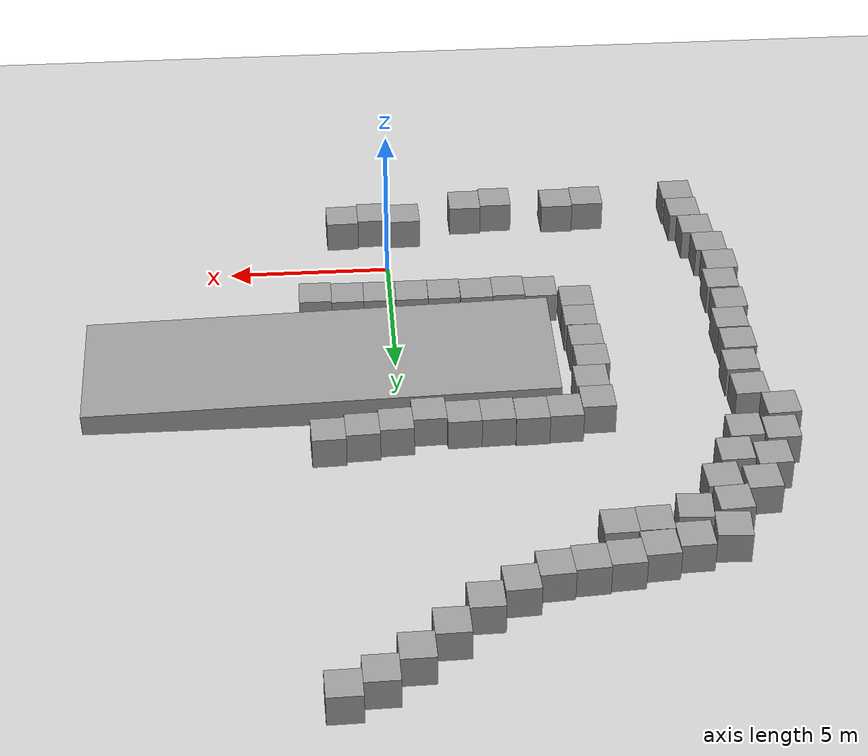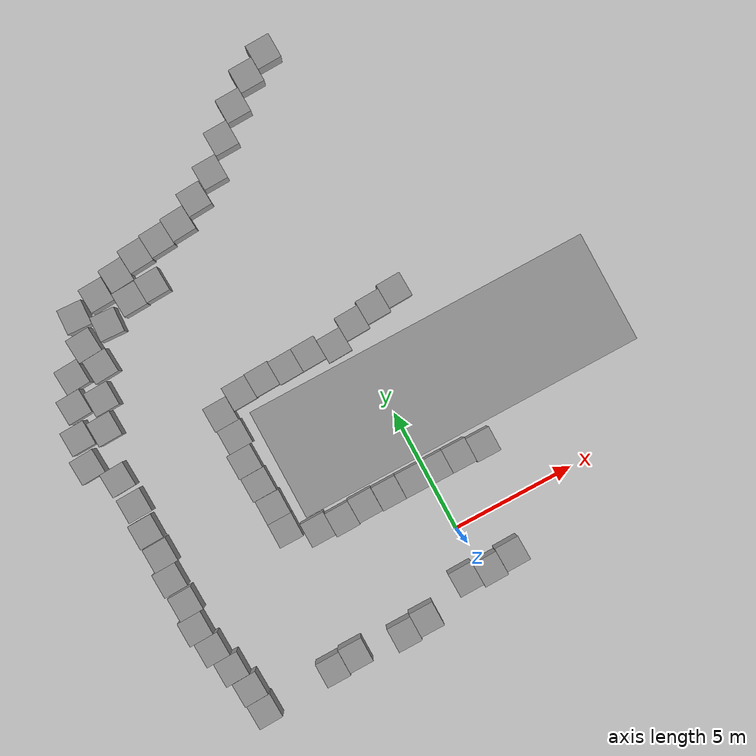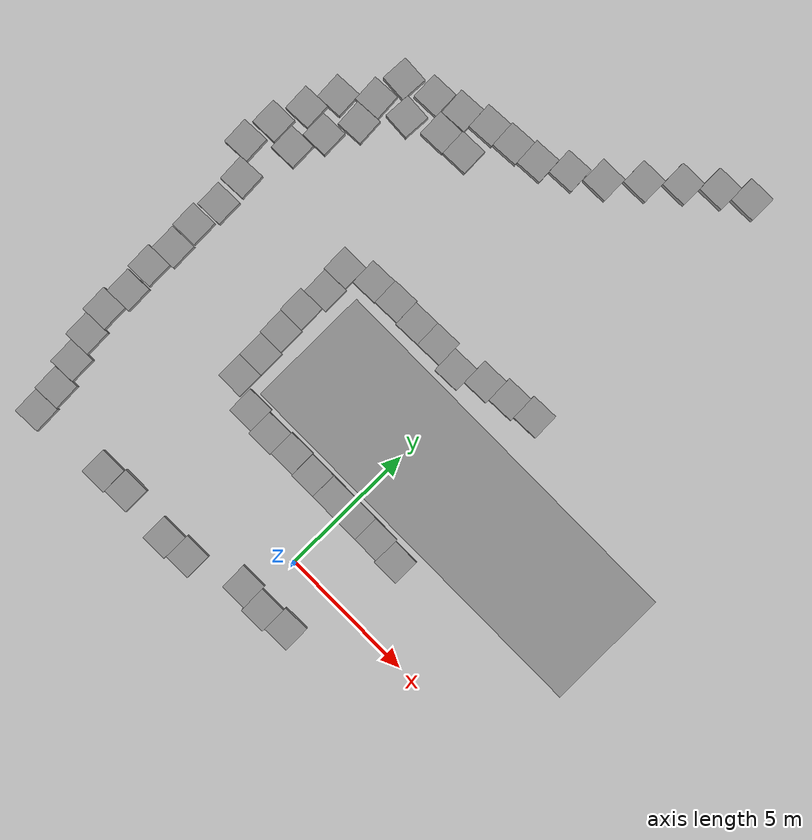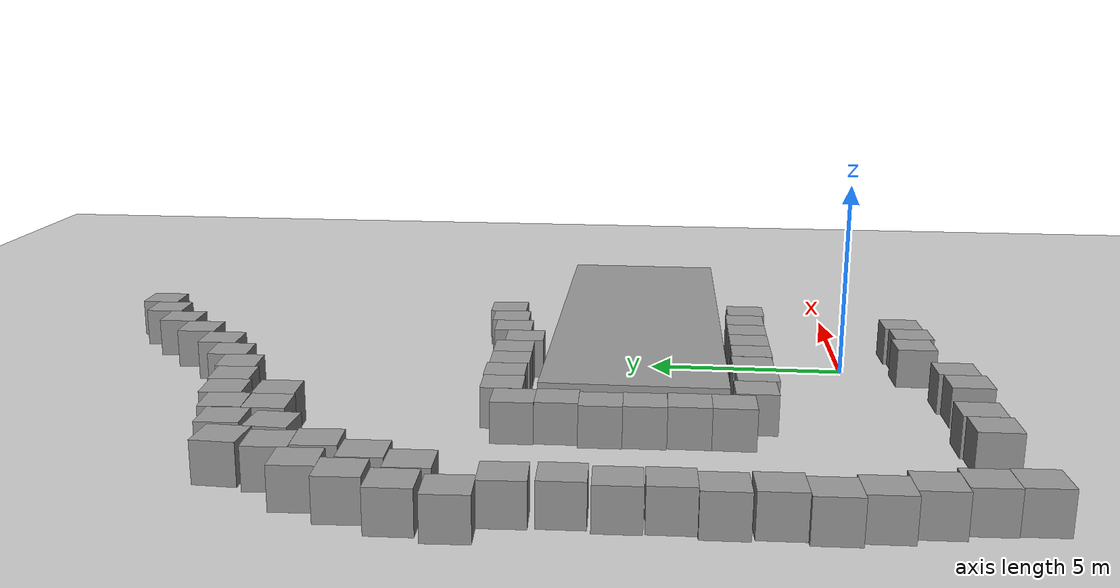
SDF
<sdf version="1.7">
 <world name="default">
  <model name="ground_plane">
   <static>1</static>
   <link name="link">
    <collision name="collision">
     <geometry><plane><normal>0 0 1</normal><size>100 100</size></plane></geometry>
     <surface>
      <contact><collide_bitmask>65535</collide_bitmask></contact>
      <friction><ode><mu>100</mu><mu2>50</mu2></ode></friction>
     </surface>
    </collision>
    <visual name="visual">
     <cast_shadows>0</cast_shadows>
     <geometry><plane><normal>0 0 1</normal><size>100 100</size></plane></geometry>
     <material>
      <script><uri>file://media/materials/scripts/gazebo.material</uri><name>Gazebo/Grey</name></script>
     </material>
    </visual>
   </link>
  </model>
  <model name="unit_box">
   <pose>-1.63061 2.48149 0.499995 -1e-05 -0 0.003924</pose>
   <link name="link">
    <inertial>
     <mass>1</mass>
     <inertia>
      <ixx>0.166667</ixx>
      <ixy>0</ixy>
      <ixz>0</ixz>
      <iyy>0.166667</iyy>
      <iyz>0</iyz>
      <izz>0.166667</izz>
     </inertia>
    </inertial>
    <collision name="collision"><geometry><box><size>1 1 1</size></box></geometry></collision>
    <visual name="visual">
     <geometry><box><size>1 1 1</size></box></geometry>
     <material>
      <script><name>Gazebo/Grey</name><uri>file://media/materials/scripts/gazebo.material</uri></script>
     </material>
    </visual>
   </link>
  </model>
  <model name="unit_box_0">
   <pose>-0.627473 2.48305 0.499995 -1e-05 -0 -0.002213</pose>
   <link name="link">
    <inertial>
     <mass>1</mass>
     <inertia>
      <ixx>0.166667</ixx>
      <ixy>0</ixy>
      <ixz>0</ixz>
      <iyy>0.166667</iyy>
      <iyz>0</iyz>
      <izz>0.166667</izz>
     </inertia>
    </inertial>
    <collision name="collision"><geometry><box><size>1 1 1</size></box></geometry></collision>
    <visual name="visual">
     <geometry><box><size>1 1 1</size></box></geometry>
     <material>
      <script><name>Gazebo/Grey</name><uri>file://media/materials/scripts/gazebo.material</uri></script>
     </material>
    </visual>
   </link>
  </model>
  <model name="unit_box_1">
   <pose>0.372526 2.48136 0.499995 -1e-05 -0 -0.002213</pose>
   <link name="link">
    <inertial>
     <mass>1</mass>
     <inertia>
      <ixx>0.166667</ixx>
      <ixy>0</ixy>
      <ixz>0</ixz>
      <iyy>0.166667</iyy>
      <iyz>0</iyz>
      <izz>0.166667</izz>
     </inertia>
    </inertial>
    <collision name="collision"><geometry><box><size>1 1 1</size></box></geometry></collision>
    <visual name="visual">
     <geometry><box><size>1 1 1</size></box></geometry>
     <material>
      <script><name>Gazebo/Grey</name><uri>file://media/materials/scripts/gazebo.material</uri></script>
     </material>
    </visual>
   </link>
  </model>
  <model name="unit_box_2">
   <pose>1.37261 2.47907 0.499995 1e-05 0 -0.002067</pose>
   <link name="link">
    <inertial>
     <mass>1</mass>
     <inertia>
      <ixx>0.166667</ixx>
      <ixy>0</ixy>
      <ixz>0</ixz>
      <iyy>0.166667</iyy>
      <iyz>0</iyz>
      <izz>0.166667</izz>
     </inertia>
    </inertial>
    <collision name="collision"><geometry><box><size>1 1 1</size></box></geometry></collision>
    <visual name="visual">
     <geometry><box><size>1 1 1</size></box></geometry>
     <material>
      <script><name>Gazebo/Grey</name><uri>file://media/materials/scripts/gazebo.material</uri></script>
     </material>
    </visual>
   </link>
  </model>
  <model name="unit_box_3">
   <pose>2.37253 2.41079 0.499995 -1e-05 -0 -0.001964</pose>
   <link name="link">
    <inertial>
     <mass>1</mass>
     <inertia>
      <ixx>0.166667</ixx>
      <ixy>0</ixy>
      <ixz>0</ixz>
      <iyy>0.166667</iyy>
      <iyz>0</iyz>
      <izz>0.166667</izz>
     </inertia>
    </inertial>
    <collision name="collision"><geometry><box><size>1 1 1</size></box></geometry></collision>
    <visual name="visual">
     <geometry><box><size>1 1 1</size></box></geometry>
     <material>
      <script><name>Gazebo/Grey</name><uri>file://media/materials/scripts/gazebo.material</uri></script>
     </material>
    </visual>
   </link>
  </model>
  <model name="unit_box_6">
   <pose>-2.63557 2.50705 0.499995 1e-05 0 0.012705</pose>
   <link name="link">
    <inertial>
     <mass>1</mass>
     <inertia>
      <ixx>0.166667</ixx>
      <ixy>0</ixy>
      <ixz>0</ixz>
      <iyy>0.166667</iyy>
      <iyz>0</iyz>
      <izz>0.166667</izz>
     </inertia>
    </inertial>
    <collision name="collision"><geometry><box><size>1 1 1</size></box></geometry></collision>
    <visual name="visual">
     <geometry><box><size>1 1 1</size></box></geometry>
     <material>
      <script><name>Gazebo/Grey</name><uri>file://media/materials/scripts/gazebo.material</uri></script>
     </material>
    </visual>
   </link>
  </model>
  <model name="unit_box_7">
   <pose>-3.63503 2.45257 0.499995 1e-05 -0 0.012608</pose>
   <link name="link">
    <inertial>
     <mass>1</mass>
     <inertia>
      <ixx>0.166667</ixx>
      <ixy>0</ixy>
      <ixz>0</ixz>
      <iyy>0.166667</iyy>
      <iyz>0</iyz>
      <izz>0.166667</izz>
     </inertia>
    </inertial>
    <collision name="collision"><geometry><box><size>1 1 1</size></box></geometry></collision>
    <visual name="visual">
     <geometry><box><size>1 1 1</size></box></geometry>
     <material>
      <script><name>Gazebo/Grey</name><uri>file://media/materials/scripts/gazebo.material</uri></script>
     </material>
    </visual>
   </link>
  </model>
  <model name="unit_box_8">
   <pose>-4.63657 2.54261 0.499995 1e-05 0 0.011882</pose>
   <link name="link">
    <inertial>
     <mass>1</mass>
     <inertia>
      <ixx>0.166667</ixx>
      <ixy>0</ixy>
      <ixz>0</ixz>
      <iyy>0.166667</iyy>
      <iyz>0</iyz>
      <izz>0.166667</izz>
     </inertia>
    </inertial>
    <collision name="collision"><geometry><box><size>1 1 1</size></box></geometry></collision>
    <visual name="visual">
     <geometry><box><size>1 1 1</size></box></geometry>
     <material>
      <script><name>Gazebo/Grey</name><uri>file://media/materials/scripts/gazebo.material</uri></script>
     </material>
    </visual>
   </link>
  </model>
  <model name="unit_box_9">
   <pose>-2.63745 -2.38464 0.499995 0 1e-05 0.002465</pose>
   <link name="link">
    <inertial>
     <mass>1</mass>
     <inertia>
      <ixx>0.166667</ixx>
      <ixy>0</ixy>
      <ixz>0</ixz>
      <iyy>0.166667</iyy>
      <iyz>0</iyz>
      <izz>0.166667</izz>
     </inertia>
    </inertial>
    <collision name="collision"><geometry><box><size>1 1 1</size></box></geometry></collision>
    <visual name="visual">
     <geometry><box><size>1 1 1</size></box></geometry>
     <material>
      <script><name>Gazebo/Grey</name><uri>file://media/materials/scripts/gazebo.material</uri></script>
     </material>
    </visual>
   </link>
  </model>
  <model name="unit_box_10">
   <pose>-3.63746 -2.49022 0.499995 -0 1e-05 0.003056</pose>
   <link name="link">
    <inertial>
     <mass>1</mass>
     <inertia>
      <ixx>0.166667</ixx>
      <ixy>0</ixy>
      <ixz>0</ixz>
      <iyy>0.166667</iyy>
      <iyz>0</iyz>
      <izz>0.166667</izz>
     </inertia>
    </inertial>
    <collision name="collision"><geometry><box><size>1 1 1</size></box></geometry></collision>
    <visual name="visual">
     <geometry><box><size>1 1 1</size></box></geometry>
     <material>
      <script><name>Gazebo/Grey</name><uri>file://media/materials/scripts/gazebo.material</uri></script>
     </material>
    </visual>
   </link>
  </model>
  <model name="unit_box_11">
   <pose>-0.613583 -1.75545 0.499995 -1e-05 0 0.017502</pose>
   <link name="link">
    <inertial>
     <mass>1</mass>
     <inertia>
      <ixx>0.166667</ixx>
      <ixy>0</ixy>
      <ixz>0</ixz>
      <iyy>0.166667</iyy>
      <iyz>0</iyz>
      <izz>0.166667</izz>
     </inertia>
    </inertial>
    <collision name="collision"><geometry><box><size>1 1 1</size></box></geometry></collision>
    <visual name="visual">
     <geometry><box><size>1 1 1</size></box></geometry>
     <material>
      <script><name>Gazebo/Grey</name><uri>file://media/materials/scripts/gazebo.material</uri></script>
     </material>
    </visual>
   </link>
  </model>
  <model name="unit_box_12">
   <pose>0.388432 -1.86075 0.499995 -0 -9e-06 0.017468</pose>
   <link name="link">
    <inertial>
     <mass>1</mass>
     <inertia>
      <ixx>0.166667</ixx>
      <ixy>0</ixy>
      <ixz>0</ixz>
      <iyy>0.166667</iyy>
      <iyz>0</iyz>
      <izz>0.166667</izz>
     </inertia>
    </inertial>
    <collision name="collision"><geometry><box><size>1 1 1</size></box></geometry></collision>
    <visual name="visual">
     <geometry><box><size>1 1 1</size></box></geometry>
     <material>
      <script><name>Gazebo/Grey</name><uri>file://media/materials/scripts/gazebo.material</uri></script>
     </material>
    </visual>
   </link>
  </model>
  <model name="unit_box_13">
   <pose>1.38661 -1.74674 0.499995 0 1e-05 0.017466</pose>
   <link name="link">
    <inertial>
     <mass>1</mass>
     <inertia>
      <ixx>0.166667</ixx>
      <ixy>0</ixy>
      <ixz>0</ixz>
      <iyy>0.166667</iyy>
      <iyz>0</iyz>
      <izz>0.166667</izz>
     </inertia>
    </inertial>
    <collision name="collision"><geometry><box><size>1 1 1</size></box></geometry></collision>
    <visual name="visual">
     <geometry><box><size>1 1 1</size></box></geometry>
     <material>
      <script><name>Gazebo/Grey</name><uri>file://media/materials/scripts/gazebo.material</uri></script>
     </material>
    </visual>
   </link>
  </model>
  <model name="unit_box_32_clone_33_clone_clone_8">
   <pose>2.18443 9.11434 0.499995 -1e-05 0 0.033156</pose>
   <link name="link">
    <inertial>
     <mass>1</mass>
     <inertia>
      <ixx>0.166667</ixx>
      <ixy>0</ixy>
      <ixz>0</ixz>
      <iyy>0.166667</iyy>
      <iyz>0</iyz>
      <izz>0.166667</izz>
     </inertia>
    </inertial>
    <collision name="collision"><geometry><box><size>1 1 1</size></box></geometry></collision>
    <visual name="visual">
     <geometry><box><size>1 1 1</size></box></geometry>
     <material>
      <script><name>Gazebo/Grey</name><uri>file://media/materials/scripts/gazebo.material</uri></script>
     </material>
    </visual>
   </link>
  </model>
  <model name="unit_box_32_clone_33_clone_clone_9">
   <pose>1.18953 8.94286 0.499995 -1e-05 0 0.03315</pose>
   <link name="link">
    <inertial>
     <mass>1</mass>
     <inertia>
      <ixx>0.166667</ixx>
      <ixy>0</ixy>
      <ixz>0</ixz>
      <iyy>0.166667</iyy>
      <iyz>0</iyz>
      <izz>0.166667</izz>
     </inertia>
    </inertial>
    <collision name="collision"><geometry><box><size>1 1 1</size></box></geometry></collision>
    <visual name="visual">
     <geometry><box><size>1 1 1</size></box></geometry>
     <material>
      <script><name>Gazebo/Grey</name><uri>file://media/materials/scripts/gazebo.material</uri></script>
     </material>
    </visual>
   </link>
  </model>
  <model name="unit_box_32_clone_33_clone_clone_10">
   <pose>0.194758 8.76683 0.499995 1e-05 -0 0.033042</pose>
   <link name="link">
    <inertial>
     <mass>1</mass>
     <inertia>
      <ixx>0.166667</ixx>
      <ixy>0</ixy>
      <ixz>0</ixz>
      <iyy>0.166667</iyy>
      <iyz>0</iyz>
      <izz>0.166667</izz>
     </inertia>
    </inertial>
    <collision name="collision"><geometry><box><size>1 1 1</size></box></geometry></collision>
    <visual name="visual">
     <geometry><box><size>1 1 1</size></box></geometry>
     <material>
      <script><name>Gazebo/Grey</name><uri>file://media/materials/scripts/gazebo.material</uri></script>
     </material>
    </visual>
   </link>
  </model>
  <model name="unit_box_32_clone_33_clone_clone_11">
   <pose>-0.792282 8.35811 0.499995 1e-05 -0 0.033042</pose>
   <link name="link">
    <inertial>
     <mass>1</mass>
     <inertia>
      <ixx>0.166667</ixx>
      <ixy>0</ixy>
      <ixz>0</ixz>
      <iyy>0.166667</iyy>
      <iyz>0</iyz>
      <izz>0.166667</izz>
     </inertia>
    </inertial>
    <collision name="collision"><geometry><box><size>1 1 1</size></box></geometry></collision>
    <visual name="visual">
     <geometry><box><size>1 1 1</size></box></geometry>
     <material>
      <script><name>Gazebo/Grey</name><uri>file://media/materials/scripts/gazebo.material</uri></script>
     </material>
    </visual>
   </link>
  </model>
  <model name="unit_box_32_clone_33_clone_clone_12">
   <pose>-1.79894 8.54188 0.499995 0 -1e-05 0.033038</pose>
   <link name="link">
    <inertial>
     <mass>1</mass>
     <inertia>
      <ixx>0.166667</ixx>
      <ixy>0</ixy>
      <ixz>0</ixz>
      <iyy>0.166667</iyy>
      <iyz>0</iyz>
      <izz>0.166667</izz>
     </inertia>
    </inertial>
    <collision name="collision"><geometry><box><size>1 1 1</size></box></geometry></collision>
    <visual name="visual">
     <geometry><box><size>1 1 1</size></box></geometry>
     <material>
      <script><name>Gazebo/Grey</name><uri>file://media/materials/scripts/gazebo.material</uri></script>
     </material>
    </visual>
   </link>
  </model>
  <model name="unit_box_32_clone_33_clone_clone_13">
   <pose>-2.79839 8.50867 0.499995 0 -1e-05 0.033038</pose>
   <link name="link">
    <inertial>
     <mass>1</mass>
     <inertia>
      <ixx>0.166667</ixx>
      <ixy>0</ixy>
      <ixz>0</ixz>
      <iyy>0.166667</iyy>
      <iyz>0</iyz>
      <izz>0.166667</izz>
     </inertia>
    </inertial>
    <collision name="collision"><geometry><box><size>1 1 1</size></box></geometry></collision>
    <visual name="visual">
     <geometry><box><size>1 1 1</size></box></geometry>
     <material>
      <script><name>Gazebo/Grey</name><uri>file://media/materials/scripts/gazebo.material</uri></script>
     </material>
    </visual>
   </link>
  </model>
  <model name="unit_box_32_clone_33_clone_clone_14">
   <pose>-3.79983 8.52594 0.499995 0 -1e-05 0.032308</pose>
   <link name="link">
    <inertial>
     <mass>1</mass>
     <inertia>
      <ixx>0.166667</ixx>
      <ixy>0</ixy>
      <ixz>0</ixz>
      <iyy>0.166667</iyy>
      <iyz>0</iyz>
      <izz>0.166667</izz>
     </inertia>
    </inertial>
    <collision name="collision"><geometry><box><size>1 1 1</size></box></geometry></collision>
    <visual name="visual">
     <geometry><box><size>1 1 1</size></box></geometry>
     <material>
      <script><name>Gazebo/Grey</name><uri>file://media/materials/scripts/gazebo.material</uri></script>
     </material>
    </visual>
   </link>
  </model>
  <model name="unit_box_32_clone_33_clone_clone_15">
   <pose>-4.79857 8.47023 0.499995 0 -1e-05 0.03229</pose>
   <link name="link">
    <inertial>
     <mass>1</mass>
     <inertia>
      <ixx>0.166667</ixx>
      <ixy>0</ixy>
      <ixz>0</ixz>
      <iyy>0.166667</iyy>
      <iyz>0</iyz>
      <izz>0.166667</izz>
     </inertia>
    </inertial>
    <collision name="collision"><geometry><box><size>1 1 1</size></box></geometry></collision>
    <visual name="visual">
     <geometry><box><size>1 1 1</size></box></geometry>
     <material>
      <script><name>Gazebo/Grey</name><uri>file://media/materials/scripts/gazebo.material</uri></script>
     </material>
    </visual>
   </link>
  </model>
  <model name="unit_box_32_clone_33_clone_clone_16">
   <pose>-5.79561 8.10571 0.499995 1e-05 -0 0.021265</pose>
   <link name="link">
    <inertial>
     <mass>1</mass>
     <inertia>
      <ixx>0.166667</ixx>
      <ixy>0</ixy>
      <ixz>0</ixz>
      <iyy>0.166667</iyy>
      <iyz>0</iyz>
      <izz>0.166667</izz>
     </inertia>
    </inertial>
    <collision name="collision"><geometry><box><size>1 1 1</size></box></geometry></collision>
    <visual name="visual">
     <geometry><box><size>1 1 1</size></box></geometry>
     <material>
      <script><name>Gazebo/Grey</name><uri>file://media/materials/scripts/gazebo.material</uri></script>
     </material>
    </visual>
   </link>
  </model>
  <model name="unit_box_32_clone_33_clone_clone_17">
   <pose>-5.72133 7.1065 0.5 0 -0 0.020601</pose>
   <link name="link">
    <inertial>
     <mass>1</mass>
     <inertia>
      <ixx>0.166667</ixx>
      <ixy>0</ixy>
      <ixz>0</ixz>
      <iyy>0.166667</iyy>
      <iyz>0</iyz>
      <izz>0.166667</izz>
     </inertia>
    </inertial>
    <collision name="collision"><geometry><box><size>1 1 1</size></box></geometry></collision>
    <visual name="visual">
     <geometry><box><size>1 1 1</size></box></geometry>
     <material>
      <script><name>Gazebo/Grey</name><uri>file://media/materials/scripts/gazebo.material</uri></script>
     </material>
    </visual>
   </link>
  </model>
  <model name="unit_box_32_clone_33_clone_clone_18">
   <pose>-5.84934 6.10349 0.499995 1e-05 -0 0.020575</pose>
   <link name="link">
    <inertial>
     <mass>1</mass>
     <inertia>
      <ixx>0.166667</ixx>
      <ixy>0</ixy>
      <ixz>0</ixz>
      <iyy>0.166667</iyy>
      <iyz>0</iyz>
      <izz>0.166667</izz>
     </inertia>
    </inertial>
    <collision name="collision"><geometry><box><size>1 1 1</size></box></geometry></collision>
    <visual name="visual">
     <geometry><box><size>1 1 1</size></box></geometry>
     <material>
      <script><name>Gazebo/Grey</name><uri>file://media/materials/scripts/gazebo.material</uri></script>
     </material>
    </visual>
   </link>
  </model>
  <model name="unit_box_32_clone_33_clone_clone_19">
   <pose>-5.79003 5.1022 0.499995 1e-05 -0 0.015971</pose>
   <link name="link">
    <inertial>
     <mass>1</mass>
     <inertia>
      <ixx>0.166667</ixx>
      <ixy>0</ixy>
      <ixz>0</ixz>
      <iyy>0.166667</iyy>
      <iyz>0</iyz>
      <izz>0.166667</izz>
     </inertia>
    </inertial>
    <collision name="collision"><geometry><box><size>1 1 1</size></box></geometry></collision>
    <visual name="visual">
     <geometry><box><size>1 1 1</size></box></geometry>
     <material>
      <script><name>Gazebo/Grey</name><uri>file://media/materials/scripts/gazebo.material</uri></script>
     </material>
    </visual>
   </link>
  </model>
  <model name="unit_box_32_clone_33_clone_clone_20">
   <pose>-5.721 4.09673 0.499995 -1e-05 -0 0.003</pose>
   <link name="link">
    <inertial>
     <mass>1</mass>
     <inertia>
      <ixx>0.166667</ixx>
      <ixy>0</ixy>
      <ixz>0</ixz>
      <iyy>0.166667</iyy>
      <iyz>0</iyz>
      <izz>0.166667</izz>
     </inertia>
    </inertial>
    <collision name="collision"><geometry><box><size>1 1 1</size></box></geometry></collision>
    <visual name="visual">
     <geometry><box><size>1 1 1</size></box></geometry>
     <material>
      <script><name>Gazebo/Grey</name><uri>file://media/materials/scripts/gazebo.material</uri></script>
     </material>
    </visual>
   </link>
  </model>
  <model name="unit_box_32_clone_33_clone_clone_20_clone">
   <pose>-5.71509 3.09663 0.499995 -1e-05 0 0.002785</pose>
   <link name="link">
    <inertial>
     <mass>1</mass>
     <inertia>
      <ixx>0.166667</ixx>
      <ixy>0</ixy>
      <ixz>0</ixz>
      <iyy>0.166667</iyy>
      <iyz>0</iyz>
      <izz>0.166667</izz>
     </inertia>
    </inertial>
    <collision name="collision"><geometry><box><size>1 1 1</size></box></geometry></collision>
    <visual name="visual">
     <geometry><box><size>1 1 1</size></box></geometry>
     <material>
      <script><name>Gazebo/Grey</name><uri>file://media/materials/scripts/gazebo.material</uri></script>
     </material>
    </visual>
   </link>
  </model>
  <model name="unit_box_32_clone_33_clone_clone_20_clone_4">
   <pose>2.1139 19.3692 0.5 0 -0 0.022661</pose>
   <link name="link">
    <inertial>
     <mass>1</mass>
     <inertia>
      <ixx>0.166667</ixx>
      <ixy>0</ixy>
      <ixz>0</ixz>
      <iyy>0.166667</iyy>
      <iyz>0</iyz>
      <izz>0.166667</izz>
     </inertia>
    </inertial>
    <collision name="collision"><geometry><box><size>1 1 1</size></box></geometry></collision>
    <visual name="visual">
     <geometry><box><size>1 1 1</size></box></geometry>
     <material>
      <script><name>Gazebo/Grey</name><uri>file://media/materials/scripts/gazebo.material</uri></script>
     </material>
    </visual>
   </link>
  </model>
  <model name="unit_box_32_clone_33_clone_clone_20_clone_5">
   <pose>1.12462 18.8777 0.499995 0 1e-05 0.022706</pose>
   <link name="link">
    <inertial>
     <mass>1</mass>
     <inertia>
      <ixx>0.166667</ixx>
      <ixy>0</ixy>
      <ixz>0</ixz>
      <iyy>0.166667</iyy>
      <iyz>0</iyz>
      <izz>0.166667</izz>
     </inertia>
    </inertial>
    <collision name="collision"><geometry><box><size>1 1 1</size></box></geometry></collision>
    <visual name="visual">
     <geometry><box><size>1 1 1</size></box></geometry>
     <material>
      <script><name>Gazebo/Grey</name><uri>file://media/materials/scripts/gazebo.material</uri></script>
     </material>
    </visual>
   </link>
  </model>
  <model name="unit_box_32_clone_33_clone_clone_20_clone_6">
   <pose>0.140931 18.11 0.499995 -1e-05 0 0.022987</pose>
   <link name="link">
    <inertial>
     <mass>1</mass>
     <inertia>
      <ixx>0.166667</ixx>
      <ixy>0</ixy>
      <ixz>0</ixz>
      <iyy>0.166667</iyy>
      <iyz>0</iyz>
      <izz>0.166667</izz>
     </inertia>
    </inertial>
    <collision name="collision"><geometry><box><size>1 1 1</size></box></geometry></collision>
    <visual name="visual">
     <geometry><box><size>1 1 1</size></box></geometry>
     <material>
      <script><name>Gazebo/Grey</name><uri>file://media/materials/scripts/gazebo.material</uri></script>
     </material>
    </visual>
   </link>
  </model>
  <model name="unit_box_32_clone_33_clone_clone_20_clone_7">
   <pose>-0.839433 17.2415 0.5 0 -0 0.023016</pose>
   <link name="link">
    <inertial>
     <mass>1</mass>
     <inertia>
      <ixx>0.166667</ixx>
      <ixy>0</ixy>
      <ixz>0</ixz>
      <iyy>0.166667</iyy>
      <iyz>0</iyz>
      <izz>0.166667</izz>
     </inertia>
    </inertial>
    <collision name="collision"><geometry><box><size>1 1 1</size></box></geometry></collision>
    <visual name="visual">
     <geometry><box><size>1 1 1</size></box></geometry>
     <material>
      <script><name>Gazebo/Grey</name><uri>file://media/materials/scripts/gazebo.material</uri></script>
     </material>
    </visual>
   </link>
  </model>
  <model name="unit_box_32_clone_33_clone_clone_20_clone_8">
   <pose>-1.81949 16.317 0.499995 -1e-05 0 0.023765</pose>
   <link name="link">
    <inertial>
     <mass>1</mass>
     <inertia>
      <ixx>0.166667</ixx>
      <ixy>0</ixy>
      <ixz>0</ixz>
      <iyy>0.166667</iyy>
      <iyz>0</iyz>
      <izz>0.166667</izz>
     </inertia>
    </inertial>
    <collision name="collision"><geometry><box><size>1 1 1</size></box></geometry></collision>
    <visual name="visual">
     <geometry><box><size>1 1 1</size></box></geometry>
     <material>
      <script><name>Gazebo/Grey</name><uri>file://media/materials/scripts/gazebo.material</uri></script>
     </material>
    </visual>
   </link>
  </model>
  <model name="unit_box_32_clone_33_clone_clone_20_clone_9">
   <pose>-2.82799 15.7192 0.5 0 -0 0.054302</pose>
   <link name="link">
    <inertial>
     <mass>1</mass>
     <inertia>
      <ixx>0.166667</ixx>
      <ixy>0</ixy>
      <ixz>0</ixz>
      <iyy>0.166667</iyy>
      <iyz>0</iyz>
      <izz>0.166667</izz>
     </inertia>
    </inertial>
    <collision name="collision"><geometry><box><size>1 1 1</size></box></geometry></collision>
    <visual name="visual">
     <geometry><box><size>1 1 1</size></box></geometry>
     <material>
      <script><name>Gazebo/Grey</name><uri>file://media/materials/scripts/gazebo.material</uri></script>
     </material>
    </visual>
   </link>
  </model>
  <model name="unit_box_32_clone_33_clone_clone_20_clone_10">
   <pose>-3.80301 15.1862 0.499995 0 -1e-05 0.063729</pose>
   <link name="link">
    <inertial>
     <mass>1</mass>
     <inertia>
      <ixx>0.166667</ixx>
      <ixy>0</ixy>
      <ixz>0</ixz>
      <iyy>0.166667</iyy>
      <iyz>0</iyz>
      <izz>0.166667</izz>
     </inertia>
    </inertial>
    <collision name="collision"><geometry><box><size>1 1 1</size></box></geometry></collision>
    <visual name="visual">
     <geometry><box><size>1 1 1</size></box></geometry>
     <material>
      <script><name>Gazebo/Grey</name><uri>file://media/materials/scripts/gazebo.material</uri></script>
     </material>
    </visual>
   </link>
  </model>
  <model name="unit_box_32_clone_33_clone_clone_20_clone_11">
   <pose>-4.79481 15.0259 0.499995 0 1e-05 0.06376</pose>
   <link name="link">
    <inertial>
     <mass>1</mass>
     <inertia>
      <ixx>0.166667</ixx>
      <ixy>0</ixy>
      <ixz>0</ixz>
      <iyy>0.166667</iyy>
      <iyz>0</iyz>
      <izz>0.166667</izz>
     </inertia>
    </inertial>
    <collision name="collision"><geometry><box><size>1 1 1</size></box></geometry></collision>
    <visual name="visual">
     <geometry><box><size>1 1 1</size></box></geometry>
     <material>
      <script><name>Gazebo/Grey</name><uri>file://media/materials/scripts/gazebo.material</uri></script>
     </material>
    </visual>
   </link>
  </model>
  <model name="unit_box_32_clone_33_clone_clone_20_clone_12">
   <pose>-5.78833 14.8914 0.499995 1e-05 -0 0.06391</pose>
   <link name="link">
    <inertial>
     <mass>1</mass>
     <inertia>
      <ixx>0.166667</ixx>
      <ixy>0</ixy>
      <ixz>0</ixz>
      <iyy>0.166667</iyy>
      <iyz>0</iyz>
      <izz>0.166667</izz>
     </inertia>
    </inertial>
    <collision name="collision"><geometry><box><size>1 1 1</size></box></geometry></collision>
    <visual name="visual">
     <geometry><box><size>1 1 1</size></box></geometry>
     <material>
      <script><name>Gazebo/Grey</name><uri>file://media/materials/scripts/gazebo.material</uri></script>
     </material>
    </visual>
   </link>
  </model>
  <model name="unit_box_32_clone_33_clone_clone_20_clone_13">
   <pose>-6.77097 14.5812 0.5 0 -0 0.065625</pose>
   <link name="link">
    <inertial>
     <mass>1</mass>
     <inertia>
      <ixx>0.166667</ixx>
      <ixy>0</ixy>
      <ixz>0</ixz>
      <iyy>0.166667</iyy>
      <iyz>0</iyz>
      <izz>0.166667</izz>
     </inertia>
    </inertial>
    <collision name="collision"><geometry><box><size>1 1 1</size></box></geometry></collision>
    <visual name="visual">
     <geometry><box><size>1 1 1</size></box></geometry>
     <material>
      <script><name>Gazebo/Grey</name><uri>file://media/materials/scripts/gazebo.material</uri></script>
     </material>
    </visual>
   </link>
  </model>
  <model name="unit_box_32_clone_33_clone_clone_20_clone_14">
   <pose>-7.78362 14.2835 0.499995 0 -1e-05 0.039245</pose>
   <link name="link">
    <inertial>
     <mass>1</mass>
     <inertia>
      <ixx>0.166667</ixx>
      <ixy>0</ixy>
      <ixz>0</ixz>
      <iyy>0.166667</iyy>
      <iyz>0</iyz>
      <izz>0.166667</izz>
     </inertia>
    </inertial>
    <collision name="collision"><geometry><box><size>1 1 1</size></box></geometry></collision>
    <visual name="visual">
     <geometry><box><size>1 1 1</size></box></geometry>
     <material>
      <script><name>Gazebo/Grey</name><uri>file://media/materials/scripts/gazebo.material</uri></script>
     </material>
    </visual>
   </link>
  </model>
  <model name="unit_box_32_clone_33_clone_clone_20_clone_15">
   <pose>-8.90439 13.942 0.499995 -1e-05 -0 -0.053112</pose>
   <link name="link">
    <inertial>
     <mass>1</mass>
     <inertia>
      <ixx>0.166667</ixx>
      <ixy>0</ixy>
      <ixz>0</ixz>
      <iyy>0.166667</iyy>
      <iyz>0</iyz>
      <izz>0.166667</izz>
     </inertia>
    </inertial>
    <collision name="collision"><geometry><box><size>1 1 1</size></box></geometry></collision>
    <visual name="visual">
     <geometry><box><size>1 1 1</size></box></geometry>
     <material>
      <script><name>Gazebo/Grey</name><uri>file://media/materials/scripts/gazebo.material</uri></script>
     </material>
    </visual>
   </link>
  </model>
  <model name="unit_box_32_clone_33_clone_clone_20_clone_16">
   <pose>-6.75503 13.5642 0.499995 0 9e-06 0.037524</pose>
   <link name="link">
    <inertial>
     <mass>1</mass>
     <inertia>
      <ixx>0.166667</ixx>
      <ixy>0</ixy>
      <ixz>0</ixz>
      <iyy>0.166667</iyy>
      <iyz>0</iyz>
      <izz>0.166667</izz>
     </inertia>
    </inertial>
    <collision name="collision"><geometry><box><size>1 1 1</size></box></geometry></collision>
    <visual name="visual">
     <geometry><box><size>1 1 1</size></box></geometry>
     <material>
      <script><name>Gazebo/Grey</name><uri>file://media/materials/scripts/gazebo.material</uri></script>
     </material>
    </visual>
   </link>
  </model>
  <model name="unit_box_32_clone_33_clone_clone_20_clone_17">
   <pose>-5.75685 13.6318 0.499995 1e-05 -0 0.037547</pose>
   <link name="link">
    <inertial>
     <mass>1</mass>
     <inertia>
      <ixx>0.166667</ixx>
      <ixy>0</ixy>
      <ixz>0</ixz>
      <iyy>0.166667</iyy>
      <iyz>0</iyz>
      <izz>0.166667</izz>
     </inertia>
    </inertial>
    <collision name="collision"><geometry><box><size>1 1 1</size></box></geometry></collision>
    <visual name="visual">
     <geometry><box><size>1 1 1</size></box></geometry>
     <material>
      <script><name>Gazebo/Grey</name><uri>file://media/materials/scripts/gazebo.material</uri></script>
     </material>
    </visual>
   </link>
  </model>
  <model name="unit_box_32_clone_33_clone_clone_20_clone_18">
   <pose>-7.94466 13.1211 0.499995 -1e-05 -0 -0.053105</pose>
   <link name="link">
    <inertial>
     <mass>1</mass>
     <inertia>
      <ixx>0.166667</ixx>
      <ixy>0</ixy>
      <ixz>0</ixz>
      <iyy>0.166667</iyy>
      <iyz>0</iyz>
      <izz>0.166667</izz>
     </inertia>
    </inertial>
    <collision name="collision"><geometry><box><size>1 1 1</size></box></geometry></collision>
    <visual name="visual">
     <geometry><box><size>1 1 1</size></box></geometry>
     <material>
      <script><name>Gazebo/Grey</name><uri>file://media/materials/scripts/gazebo.material</uri></script>
     </material>
    </visual>
   </link>
  </model>
  <model name="unit_box_32_clone_33_clone_clone_20_clone_19">
   <pose>-9.10063 12.84 0.5 0 -0 0.061243</pose>
   <link name="link">
    <inertial>
     <mass>1</mass>
     <inertia>
      <ixx>0.166667</ixx>
      <ixy>0</ixy>
      <ixz>0</ixz>
      <iyy>0.166667</iyy>
      <iyz>0</iyz>
      <izz>0.166667</izz>
     </inertia>
    </inertial>
    <collision name="collision"><geometry><box><size>1 1 1</size></box></geometry></collision>
    <visual name="visual">
     <geometry><box><size>1 1 1</size></box></geometry>
     <material>
      <script><name>Gazebo/Grey</name><uri>file://media/materials/scripts/gazebo.material</uri></script>
     </material>
    </visual>
   </link>
  </model>
  <model name="unit_box_32_clone_33_clone_clone_20_clone_20">
   <pose>-10.0552 11.9966 0.499995 -1e-05 -0 0.052331</pose>
   <link name="link">
    <inertial>
     <mass>1</mass>
     <inertia>
      <ixx>0.166667</ixx>
      <ixy>0</ixy>
      <ixz>0</ixz>
      <iyy>0.166667</iyy>
      <iyz>0</iyz>
      <izz>0.166667</izz>
     </inertia>
    </inertial>
    <collision name="collision"><geometry><box><size>1 1 1</size></box></geometry></collision>
    <visual name="visual">
     <geometry><box><size>1 1 1</size></box></geometry>
     <material>
      <script><name>Gazebo/Grey</name><uri>file://media/materials/scripts/gazebo.material</uri></script>
     </material>
    </visual>
   </link>
  </model>
  <model name="unit_box_32_clone_33_clone_clone_20_clone_21">
   <pose>-10.5225 10.9709 0.499995 -1e-05 -0 0.045382</pose>
   <link name="link">
    <inertial>
     <mass>1</mass>
     <inertia>
      <ixx>0.166667</ixx>
      <ixy>0</ixy>
      <ixz>0</ixz>
      <iyy>0.166667</iyy>
      <iyz>0</iyz>
      <izz>0.166667</izz>
     </inertia>
    </inertial>
    <collision name="collision"><geometry><box><size>1 1 1</size></box></geometry></collision>
    <visual name="visual">
     <geometry><box><size>1 1 1</size></box></geometry>
     <material>
      <script><name>Gazebo/Grey</name><uri>file://media/materials/scripts/gazebo.material</uri></script>
     </material>
    </visual>
   </link>
  </model>
  <model name="unit_box_32_clone_33_clone_clone_20_clone_22">
   <pose>-10.9582 9.85781 0.499995 0 1e-05 0.027316</pose>
   <link name="link">
    <inertial>
     <mass>1</mass>
     <inertia>
      <ixx>0.166667</ixx>
      <ixy>0</ixy>
      <ixz>0</ixz>
      <iyy>0.166667</iyy>
      <iyz>0</iyz>
      <izz>0.166667</izz>
     </inertia>
    </inertial>
    <collision name="collision"><geometry><box><size>1 1 1</size></box></geometry></collision>
    <visual name="visual">
     <geometry><box><size>1 1 1</size></box></geometry>
     <material>
      <script><name>Gazebo/Grey</name><uri>file://media/materials/scripts/gazebo.material</uri></script>
     </material>
    </visual>
   </link>
  </model>
  <model name="unit_box_32_clone_33_clone_clone_20_clone_23">
   <pose>-11.1589 8.74007 0.499995 -1e-05 -0 0.048849</pose>
   <link name="link">
    <inertial>
     <mass>1</mass>
     <inertia>
      <ixx>0.166667</ixx>
      <ixy>0</ixy>
      <ixz>0</ixz>
      <iyy>0.166667</iyy>
      <iyz>0</iyz>
      <izz>0.166667</izz>
     </inertia>
    </inertial>
    <collision name="collision"><geometry><box><size>1 1 1</size></box></geometry></collision>
    <visual name="visual">
     <geometry><box><size>1 1 1</size></box></geometry>
     <material>
      <script><name>Gazebo/Grey</name><uri>file://media/materials/scripts/gazebo.material</uri></script>
     </material>
    </visual>
   </link>
  </model>
  <model name="unit_box_32_clone_33_clone_clone_20_clone_24">
   <pose>-8.92076 11.8464 0.499995 0 1e-05 0.059481</pose>
   <link name="link">
    <inertial>
     <mass>1</mass>
     <inertia>
      <ixx>0.166667</ixx>
      <ixy>0</ixy>
      <ixz>0</ixz>
      <iyy>0.166667</iyy>
      <iyz>0</iyz>
      <izz>0.166667</izz>
     </inertia>
    </inertial>
    <collision name="collision"><geometry><box><size>1 1 1</size></box></geometry></collision>
    <visual name="visual">
     <geometry><box><size>1 1 1</size></box></geometry>
     <material>
      <script><name>Gazebo/Grey</name><uri>file://media/materials/scripts/gazebo.material</uri></script>
     </material>
    </visual>
   </link>
  </model>
  <model name="unit_box_32_clone_33_clone_clone_20_clone_25">
   <pose>-9.46967 10.7446 0.5 0 -0 0.027317</pose>
   <link name="link">
    <inertial>
     <mass>1</mass>
     <inertia>
      <ixx>0.166667</ixx>
      <ixy>0</ixy>
      <ixz>0</ixz>
      <iyy>0.166667</iyy>
      <iyz>0</iyz>
      <izz>0.166667</izz>
     </inertia>
    </inertial>
    <collision name="collision"><geometry><box><size>1 1 1</size></box></geometry></collision>
    <visual name="visual">
     <geometry><box><size>1 1 1</size></box></geometry>
     <material>
      <script><name>Gazebo/Grey</name><uri>file://media/materials/scripts/gazebo.material</uri></script>
     </material>
    </visual>
   </link>
  </model>
  <model name="unit_box_32_clone_33_clone_clone_20_clone_26">
   <pose>-9.91305 9.69943 0.499995 0 1e-05 0.027318</pose>
   <link name="link">
    <inertial>
     <mass>1</mass>
     <inertia>
      <ixx>0.166667</ixx>
      <ixy>0</ixy>
      <ixz>0</ixz>
      <iyy>0.166667</iyy>
      <iyz>0</iyz>
      <izz>0.166667</izz>
     </inertia>
    </inertial>
    <collision name="collision"><geometry><box><size>1 1 1</size></box></geometry></collision>
    <visual name="visual">
     <geometry><box><size>1 1 1</size></box></geometry>
     <material>
      <script><name>Gazebo/Grey</name><uri>file://media/materials/scripts/gazebo.material</uri></script>
     </material>
    </visual>
   </link>
  </model>
  <model name="unit_box_32_clone_33_clone_clone_20_clone_27">
   <pose>-10.3774 7.77687 0.499995 1e-05 0 0.048852</pose>
   <link name="link">
    <inertial>
     <mass>1</mass>
     <inertia>
      <ixx>0.166667</ixx>
      <ixy>0</ixy>
      <ixz>0</ixz>
      <iyy>0.166667</iyy>
      <iyz>0</iyz>
      <izz>0.166667</izz>
     </inertia>
    </inertial>
    <collision name="collision"><geometry><box><size>1 1 1</size></box></geometry></collision>
    <visual name="visual">
     <geometry><box><size>1 1 1</size></box></geometry>
     <material>
      <script><name>Gazebo/Grey</name><uri>file://media/materials/scripts/gazebo.material</uri></script>
     </material>
    </visual>
   </link>
  </model>
  <model name="unit_box_32_clone_33_clone_clone_20_clone_28">
   <pose>-10.2931 6.6275 0.499995 0 1e-05 0.027319</pose>
   <link name="link">
    <inertial>
     <mass>1</mass>
     <inertia>
      <ixx>0.166667</ixx>
      <ixy>0</ixy>
      <ixz>0</ixz>
      <iyy>0.166667</iyy>
      <iyz>0</iyz>
      <izz>0.166667</izz>
     </inertia>
    </inertial>
    <collision name="collision"><geometry><box><size>1 1 1</size></box></geometry></collision>
    <visual name="visual">
     <geometry><box><size>1 1 1</size></box></geometry>
     <material>
      <script><name>Gazebo/Grey</name><uri>file://media/materials/scripts/gazebo.material</uri></script>
     </material>
    </visual>
   </link>
  </model>
  <model name="unit_box_32_clone_33_clone_clone_20_clone_29">
   <pose>-10.3881 5.55069 0.499995 0 -1e-05 0.027319</pose>
   <link name="link">
    <inertial>
     <mass>1</mass>
     <inertia>
      <ixx>0.166667</ixx>
      <ixy>0</ixy>
      <ixz>0</ixz>
      <iyy>0.166667</iyy>
      <iyz>0</iyz>
      <izz>0.166667</izz>
     </inertia>
    </inertial>
    <collision name="collision"><geometry><box><size>1 1 1</size></box></geometry></collision>
    <visual name="visual">
     <geometry><box><size>1 1 1</size></box></geometry>
     <material>
      <script><name>Gazebo/Grey</name><uri>file://media/materials/scripts/gazebo.material</uri></script>
     </material>
    </visual>
   </link>
  </model>
  <model name="unit_box_32_clone_33_clone_clone_20_clone_30">
   <pose>-10.324 4.51644 0.499995 0 -1e-05 0.025238</pose>
   <link name="link">
    <inertial>
     <mass>1</mass>
     <inertia>
      <ixx>0.166667</ixx>
      <ixy>0</ixy>
      <ixz>0</ixz>
      <iyy>0.166667</iyy>
      <iyz>0</iyz>
      <izz>0.166667</izz>
     </inertia>
    </inertial>
    <collision name="collision"><geometry><box><size>1 1 1</size></box></geometry></collision>
    <visual name="visual">
     <geometry><box><size>1 1 1</size></box></geometry>
     <material>
      <script><name>Gazebo/Grey</name><uri>file://media/materials/scripts/gazebo.material</uri></script>
     </material>
    </visual>
   </link>
  </model>
  <model name="unit_box_32_clone_33_clone_clone_20_clone_31">
   <pose>-10.4521 3.51288 0.499995 0 -1e-05 0.025233</pose>
   <link name="link">
    <inertial>
     <mass>1</mass>
     <inertia>
      <ixx>0.166667</ixx>
      <ixy>0</ixy>
      <ixz>0</ixz>
      <iyy>0.166667</iyy>
      <iyz>0</iyz>
      <izz>0.166667</izz>
     </inertia>
    </inertial>
    <collision name="collision"><geometry><box><size>1 1 1</size></box></geometry></collision>
    <visual name="visual">
     <geometry><box><size>1 1 1</size></box></geometry>
     <material>
      <script><name>Gazebo/Grey</name><uri>file://media/materials/scripts/gazebo.material</uri></script>
     </material>
    </visual>
   </link>
  </model>
  <model name="unit_box_32_clone_33_clone_clone_20_clone_32">
   <pose>-10.3554 2.44973 0.499995 1e-05 -0 0.026888</pose>
   <link name="link">
    <inertial>
     <mass>1</mass>
     <inertia>
      <ixx>0.166667</ixx>
      <ixy>0</ixy>
      <ixz>0</ixz>
      <iyy>0.166667</iyy>
      <iyz>0</iyz>
      <izz>0.166667</izz>
     </inertia>
    </inertial>
    <collision name="collision"><geometry><box><size>1 1 1</size></box></geometry></collision>
    <visual name="visual">
     <geometry><box><size>1 1 1</size></box></geometry>
     <material>
      <script><name>Gazebo/Grey</name><uri>file://media/materials/scripts/gazebo.material</uri></script>
     </material>
    </visual>
   </link>
  </model>
  <model name="unit_box_32_clone_33_clone_clone_20_clone_33">
   <pose>-10.4838 1.44592 0.499995 1e-05 -0 0.026889</pose>
   <link name="link">
    <inertial>
     <mass>1</mass>
     <inertia>
      <ixx>0.166667</ixx>
      <ixy>0</ixy>
      <ixz>0</ixz>
      <iyy>0.166667</iyy>
      <iyz>0</iyz>
      <izz>0.166667</izz>
     </inertia>
    </inertial>
    <collision name="collision"><geometry><box><size>1 1 1</size></box></geometry></collision>
    <visual name="visual">
     <geometry><box><size>1 1 1</size></box></geometry>
     <material>
      <script><name>Gazebo/Grey</name><uri>file://media/materials/scripts/gazebo.material</uri></script>
     </material>
    </visual>
   </link>
  </model>
  <model name="unit_box_32_clone_33_clone_clone_20_clone_34">
   <pose>-10.2929 0.450662 0.499995 1e-05 -0 0.02695</pose>
   <link name="link">
    <inertial>
     <mass>1</mass>
     <inertia>
      <ixx>0.166667</ixx>
      <ixy>0</ixy>
      <ixz>0</ixz>
      <iyy>0.166667</iyy>
      <iyz>0</iyz>
      <izz>0.166667</izz>
     </inertia>
    </inertial>
    <collision name="collision"><geometry><box><size>1 1 1</size></box></geometry></collision>
    <visual name="visual">
     <geometry><box><size>1 1 1</size></box></geometry>
     <material>
      <script><name>Gazebo/Grey</name><uri>file://media/materials/scripts/gazebo.material</uri></script>
     </material>
    </visual>
   </link>
  </model>
  <model name="unit_box_32_clone_33_clone_clone_20_clone_35">
   <pose>-9.99791 -0.541783 0.499995 1e-05 0 0.027088</pose>
   <link name="link">
    <inertial>
     <mass>1</mass>
     <inertia>
      <ixx>0.166667</ixx>
      <ixy>0</ixy>
      <ixz>0</ixz>
      <iyy>0.166667</iyy>
      <iyz>0</iyz>
      <izz>0.166667</izz>
     </inertia>
    </inertial>
    <collision name="collision"><geometry><box><size>1 1 1</size></box></geometry></collision>
    <visual name="visual">
     <geometry><box><size>1 1 1</size></box></geometry>
     <material>
      <script><name>Gazebo/Grey</name><uri>file://media/materials/scripts/gazebo.material</uri></script>
     </material>
    </visual>
   </link>
  </model>
  <model name="unit_box_32_clone_33_clone_clone_20_clone_36">
   <pose>-9.7369 -1.53861 0.499995 -1e-05 -0 0.035601</pose>
   <link name="link">
    <inertial>
     <mass>1</mass>
     <inertia>
      <ixx>0.166667</ixx>
      <ixy>0</ixy>
      <ixz>0</ixz>
      <iyy>0.166667</iyy>
      <iyz>0</iyz>
      <izz>0.166667</izz>
     </inertia>
    </inertial>
    <collision name="collision"><geometry><box><size>1 1 1</size></box></geometry></collision>
    <visual name="visual">
     <geometry><box><size>1 1 1</size></box></geometry>
     <material>
      <script><name>Gazebo/Grey</name><uri>file://media/materials/scripts/gazebo.material</uri></script>
     </material>
    </visual>
   </link>
  </model>
  <model name="unit_box_32_clone_33_clone_clone_20_clone_37">
   <pose>-9.64898 -2.5376 0.5 0 -0 0.032634</pose>
   <link name="link">
    <inertial>
     <mass>1</mass>
     <inertia>
      <ixx>0.166667</ixx>
      <ixy>0</ixy>
      <ixz>0</ixz>
      <iyy>0.166667</iyy>
      <iyz>0</iyz>
      <izz>0.166667</izz>
     </inertia>
    </inertial>
    <collision name="collision"><geometry><box><size>1 1 1</size></box></geometry></collision>
    <visual name="visual">
     <geometry><box><size>1 1 1</size></box></geometry>
     <material>
      <script><name>Gazebo/Grey</name><uri>file://media/materials/scripts/gazebo.material</uri></script>
     </material>
    </visual>
   </link>
  </model>
  <model name="unit_box_32_clone_33_clone_clone_20_clone_40">
   <pose>-6.64039 -2.38387 0.499995 0 1e-05 0.00851</pose>
   <link name="link">
    <inertial>
     <mass>1</mass>
     <inertia>
      <ixx>0.166667</ixx>
      <ixy>0</ixy>
      <ixz>0</ixz>
      <iyy>0.166667</iyy>
      <iyz>0</iyz>
      <izz>0.166667</izz>
     </inertia>
    </inertial>
    <collision name="collision"><geometry><box><size>1 1 1</size></box></geometry></collision>
    <visual name="visual">
     <geometry><box><size>1 1 1</size></box></geometry>
     <material>
      <script><name>Gazebo/Grey</name><uri>file://media/materials/scripts/gazebo.material</uri></script>
     </material>
    </visual>
   </link>
  </model>
  <model name="unit_box_32_clone_33_clone_clone_20_clone_41">
   <pose>-5.63948 -2.30451 0.499995 -1e-05 0 0.005447</pose>
   <link name="link">
    <inertial>
     <mass>1</mass>
     <inertia>
      <ixx>0.166667</ixx>
      <ixy>0</ixy>
      <ixz>0</ixz>
      <iyy>0.166667</iyy>
      <iyz>0</iyz>
      <izz>0.166667</izz>
     </inertia>
    </inertial>
    <collision name="collision"><geometry><box><size>1 1 1</size></box></geometry></collision>
    <visual name="visual">
     <geometry><box><size>1 1 1</size></box></geometry>
     <material>
      <script><name>Gazebo/Grey</name><uri>file://media/materials/scripts/gazebo.material</uri></script>
     </material>
    </visual>
   </link>
  </model>
  <model name="unit_box_34">
   <pose>2.30684 5.39562 0.317644 0 0.025698 0</pose>
   <link name="link">
    <inertial>
     <mass>1</mass>
     <inertia>
      <ixx>0.166667</ixx>
      <ixy>0</ixy>
      <ixz>0</ixz>
      <iyy>0.166667</iyy>
      <iyz>0</iyz>
      <izz>0.166667</izz>
     </inertia>
    </inertial>
    <collision name="collision"><geometry><box><size>14.2326 4.50498 1</size></box></geometry></collision>
    <visual name="visual">
     <geometry><box><size>14.2326 4.50498 1</size></box></geometry>
     <material>
      <script><name>Gazebo/Grey</name><uri>file://media/materials/scripts/gazebo.material</uri></script>
     </material>
    </visual>
   </link>
  </model>
 </world>
</sdf>
